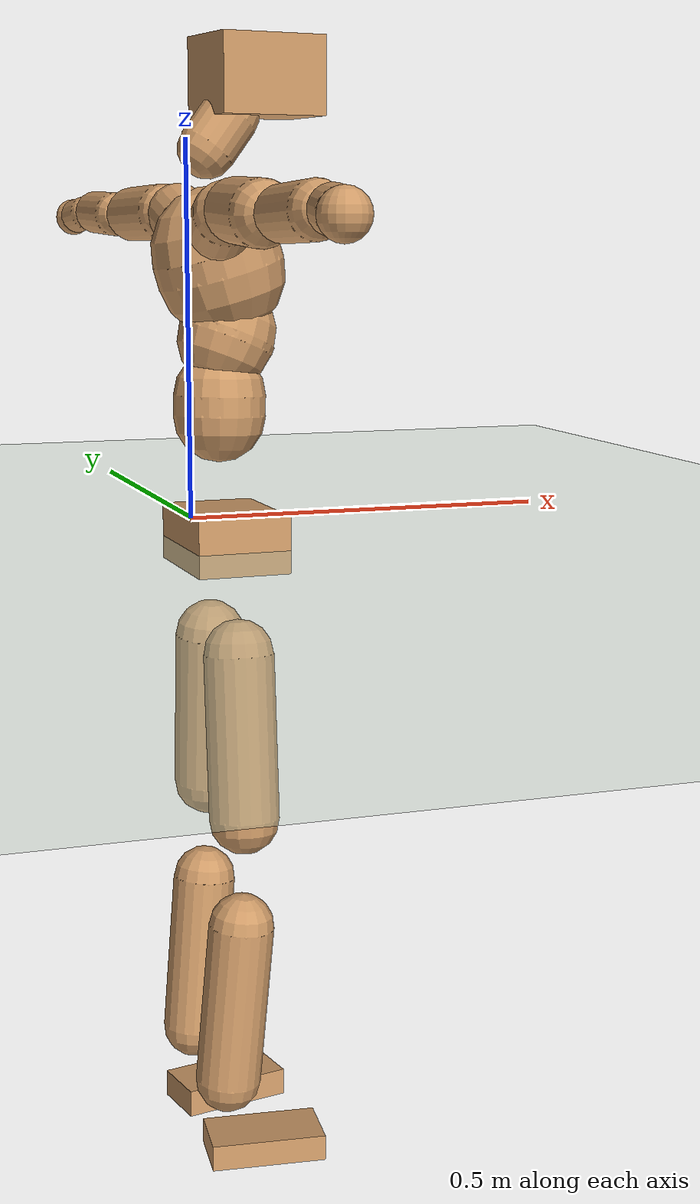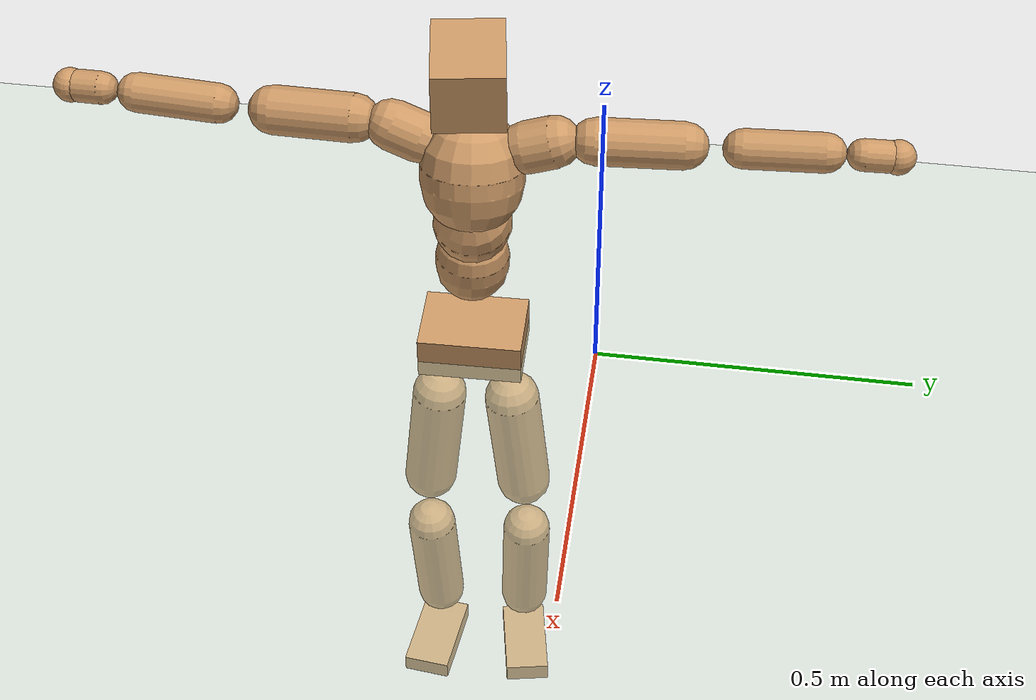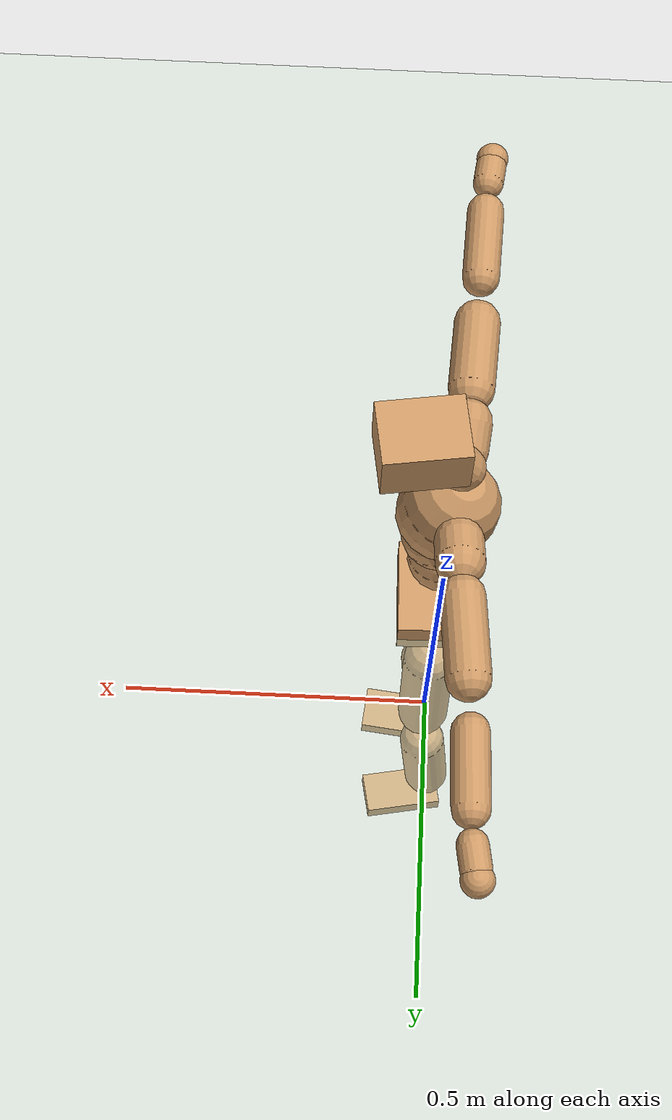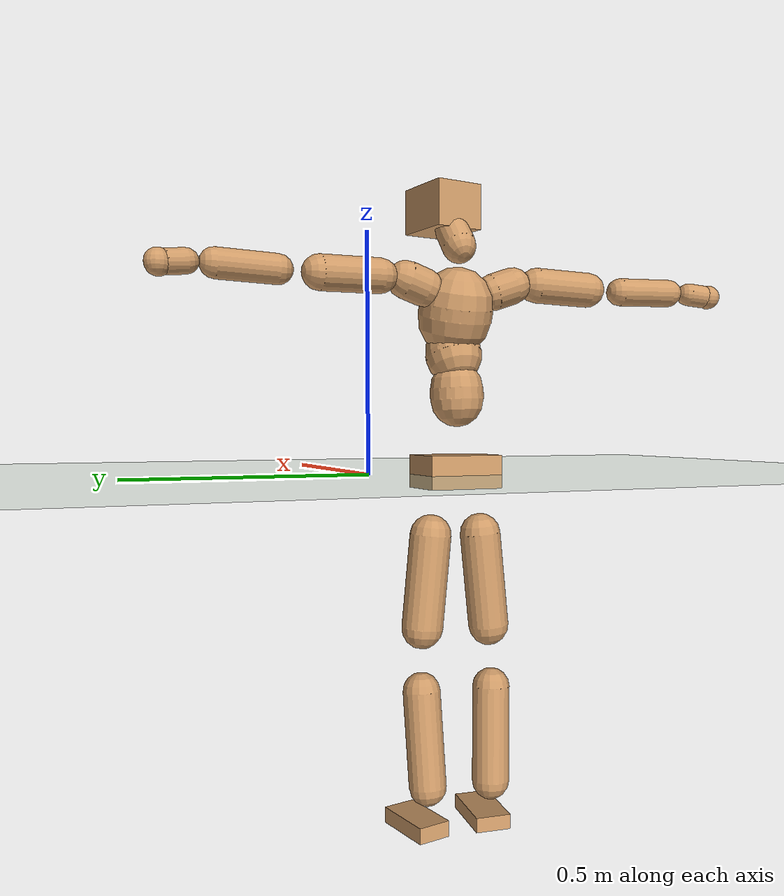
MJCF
<mujoco model="humanoid">
  <compiler coordinate="local" angle="radian"/>
  <default>
    <joint damping="0.0" armature="0.01" stiffness="0.0" limited="true"/>
    <geom conaffinity="1" condim="3" contype="7" margin="0.001" rgba="0.8 0.6 .4 1"/>
  </default>
  <asset>
    <texture type="skybox" builtin="gradient" rgb1=".4 .5 .6" rgb2="0 0 0" width="100" height="100"/>
    <texture builtin="flat" height="1278" mark="cross" markrgb="1 1 1" name="texgeom" random="0.01" rgb1="0.8 0.6 0.4" rgb2="0.8 0.6 0.4" type="cube" width="127"/>
    <texture builtin="checker" height="100" name="texplane" rgb1="0 0 0" rgb2="0.8 0.8 0.8" type="2d" width="100"/>
    <material name="MatPlane" reflectance="0.5" shininess="1" specular="1" texrepeat="60 60" texture="texplane"/>
    <material name="geom" texture="texgeom" texuniform="true"/>
  </asset>
  <worldbody>
    <light cutoff="100" diffuse="1 1 1" dir="-0 0 -1.3" directional="true" exponent="1" pos="0 0 1.3" specular=".1 .1 .1"/>
    <geom conaffinity="1" condim="3" name="floor" pos="0 0 0" rgba="0.8 0.9 0.8 1" size="100 100 .2" type="plane" material="MatPlane"/>
    <body name="Pelvis" pos="-0.0023 -0.1967 0.0162">
      <freejoint name="Pelvis"/>
      <geom type="box" contype="1" conaffinity="1" density="500" pos="-0.0047 -0.0001 -0.0114" size="0.0587 0.0824 0.0356" quat="0.9999 0.0000 0.0000 0.0103" name="Pelvis"/>
      <body name="L_Hip" pos="-0.0094 0.054 -0.0803">
        <joint name="L_Hip_x" type="hinge" pos="0 0 0" axis="1 0 0" stiffness="800" damping="80" armature="0.02" range="-180.0000 180.0000"/>
        <joint name="L_Hip_y" type="hinge" pos="0 0 0" axis="0 1 0" stiffness="800" damping="80" armature="0.02" range="-180.0000 180.0000"/>
        <joint name="L_Hip_z" type="hinge" pos="0 0 0" axis="0 0 1" stiffness="800" damping="80" armature="0.02" range="-180.0000 180.0000"/>
        <geom type="capsule" contype="1" conaffinity="1" density="500" fromto="0.0000 0.0065 -0.0671 0.0000 0.0260 -0.2685" size="0.0448" name="L_Hip"/>
        <body name="L_Knee" pos="0 0.0325 -0.3357">
          <joint name="L_Knee_x" type="hinge" pos="0 0 0" axis="1 0 0" stiffness="800" damping="80" armature="0.02" range="-180.0000 180.0000"/>
          <joint name="L_Knee_y" type="hinge" pos="0 0 0" axis="0 1 0" stiffness="800" damping="80" armature="0.02" range="-180.0000 180.0000"/>
          <joint name="L_Knee_z" type="hinge" pos="0 0 0" axis="0 0 1" stiffness="800" damping="80" armature="0.02" range="-180.0000 180.0000"/>
          <geom type="capsule" contype="1" conaffinity="1" density="500" fromto="-0.0061 -0.0021 -0.0697 -0.0246 -0.0086 -0.2786" size="0.0408" name="L_Knee"/>
          <body name="L_Ankle" pos="-0.0307 -0.0107 -0.3483">
            <joint name="L_Ankle_x" type="hinge" pos="0 0 0" axis="1 0 0" stiffness="800" damping="80" armature="0.02" range="-180.0000 180.0000"/>
            <joint name="L_Ankle_y" type="hinge" pos="0 0 0" axis="0 1 0" stiffness="800" damping="80" armature="0.02" range="-180.0000 180.0000"/>
            <joint name="L_Ankle_z" type="hinge" pos="0 0 0" axis="0 0 1" stiffness="800" damping="80" armature="0.02" range="-180.0000 180.0000"/>
            <geom type="box" contype="1" conaffinity="1" density="500" pos="0.0512 0.0099 -0.0247" size="0.071 0.0376 0.0178" quat="0.9955 0.0000 0.0000 0.0950" name="L_Ankle"/>
            <body name="L_Toe" pos="0.1024 0.0197 -0.0494">
              <joint name="L_Toe_x" type="hinge" pos="0 0 0" axis="1 0 0" stiffness="500" damping="50" armature="0.02" range="-180.0000 180.0000"/>
              <joint name="L_Toe_y" type="hinge" pos="0 0 0" axis="0 1 0" stiffness="500" damping="50" armature="0.02" range="-180.0000 180.0000"/>
              <joint name="L_Toe_z" type="hinge" pos="0 0 0" axis="0 0 1" stiffness="500" damping="50" armature="0.02" range="-180.0000 180.0000"/>
              <geom type="box" contype="1" conaffinity="1" density="500" pos="0.0000 0.0000 0.0257" size="0.0007 0.0019 0.0009" quat="0.9947 0.0000 0.0000 0.1024" name="L_Toe"/>
            </body>
          </body>
        </body>
      </body>
      <body name="R_Hip" pos="-0.006 -0.0526 -0.0798">
        <joint name="R_Hip_x" type="hinge" pos="0 0 0" axis="1 0 0" stiffness="800" damping="80" armature="0.02" range="-180.0000 180.0000"/>
        <joint name="R_Hip_y" type="hinge" pos="0 0 0" axis="0 1 0" stiffness="800" damping="80" armature="0.02" range="-180.0000 180.0000"/>
        <joint name="R_Hip_z" type="hinge" pos="0 0 0" axis="0 0 1" stiffness="800" damping="80" armature="0.02" range="-180.0000 180.0000"/>
        <geom type="capsule" contype="1" conaffinity="1" density="500" fromto="-0.0003 -0.0071 -0.0689 -0.0011 -0.0285 -0.2755" size="0.0442" name="R_Hip"/>
        <body name="R_Knee" pos="-0.0014 -0.0356 -0.3444">
          <joint name="R_Knee_x" type="hinge" pos="0 0 0" axis="1 0 0" stiffness="800" damping="80" armature="0.02" range="-180.0000 180.0000"/>
          <joint name="R_Knee_y" type="hinge" pos="0 0 0" axis="0 1 0" stiffness="800" damping="80" armature="0.02" range="-180.0000 180.0000"/>
          <joint name="R_Knee_z" type="hinge" pos="0 0 0" axis="0 0 1" stiffness="800" damping="80" armature="0.02" range="-180.0000 180.0000"/>
          <geom type="capsule" contype="1" conaffinity="1" density="500" fromto="-0.0057 0.0029 -0.0699 -0.0228 0.0114 -0.2797" size="0.0414" name="R_Knee"/>
          <body name="R_Ankle" pos="-0.0285 0.0143 -0.3496">
            <joint name="R_Ankle_x" type="hinge" pos="0 0 0" axis="1 0 0" stiffness="800" damping="80" armature="0.02" range="-180.0000 180.0000"/>
            <joint name="R_Ankle_y" type="hinge" pos="0 0 0" axis="0 1 0" stiffness="800" damping="80" armature="0.02" range="-180.0000 180.0000"/>
            <joint name="R_Ankle_z" type="hinge" pos="0 0 0" axis="0 0 1" stiffness="800" damping="80" armature="0.02" range="-180.0000 180.0000"/>
            <geom type="box" contype="1" conaffinity="1" density="500" pos="0.0522 -0.0059 -0.0204" size="0.0734 0.0401 0.0166" quat="0.9984 0.0000 0.0000 -0.0559" name="R_Ankle"/>
            <body name="R_Toe" pos="0.1045 -0.0117 -0.0407">
              <joint name="R_Toe_x" type="hinge" pos="0 0 0" axis="1 0 0" stiffness="500" damping="50" armature="0.02" range="-180.0000 180.0000"/>
              <joint name="R_Toe_y" type="hinge" pos="0 0 0" axis="0 1 0" stiffness="500" damping="50" armature="0.02" range="-180.0000 180.0000"/>
              <joint name="R_Toe_z" type="hinge" pos="0 0 0" axis="0 0 1" stiffness="500" damping="50" armature="0.02" range="-180.0000 180.0000"/>
              <geom type="box" contype="1" conaffinity="1" density="500" pos="0.0000 0.0000 0.0222" size="0.0008 0.002 0.0009" quat="0.9990 0.0000 0.0000 -0.0455" name="R_Toe"/>
            </body>
          </body>
        </body>
      </body>
      <body name="Torso" pos="-0.0127 -0.002 0.0917">
        <joint name="Torso_x" type="hinge" pos="0 0 0" axis="1 0 0" stiffness="1000" damping="100" armature="0.02" range="-180.0000 180.0000"/>
        <joint name="Torso_y" type="hinge" pos="0 0 0" axis="0 1 0" stiffness="1000" damping="100" armature="0.02" range="-180.0000 180.0000"/>
        <joint name="Torso_z" type="hinge" pos="0 0 0" axis="0 0 1" stiffness="1000" damping="100" armature="0.02" range="-180.0000 180.0000"/>
        <geom type="capsule" contype="1" conaffinity="1" density="500" fromto="0.0021 0.0024 0.0747 0.0014 0.0016 0.0498" size="0.0572" name="Torso"/>
        <body name="Spine" pos="0.0035 0.0039 0.1244">
          <joint name="Spine_x" type="hinge" pos="0 0 0" axis="1 0 0" stiffness="1000" damping="100" armature="0.02" range="-180.0000 180.0000"/>
          <joint name="Spine_y" type="hinge" pos="0 0 0" axis="0 1 0" stiffness="1000" damping="100" armature="0.02" range="-180.0000 180.0000"/>
          <joint name="Spine_z" type="hinge" pos="0 0 0" axis="0 0 1" stiffness="1000" damping="100" armature="0.02" range="-180.0000 180.0000"/>
          <geom type="capsule" contype="1" conaffinity="1" density="500" fromto="0.0111 0.0014 0.0280 0.0074 0.0009 0.0187" size="0.0603" name="Spine"/>
          <body name="Chest" pos="0.0184 0.0024 0.0466">
            <joint name="Chest_x" type="hinge" pos="0 0 0" axis="1 0 0" stiffness="1000" damping="100" armature="0.02" range="-180.0000 180.0000"/>
            <joint name="Chest_y" type="hinge" pos="0 0 0" axis="0 1 0" stiffness="1000" damping="100" armature="0.02" range="-180.0000 180.0000"/>
            <joint name="Chest_z" type="hinge" pos="0 0 0" axis="0 0 1" stiffness="1000" damping="100" armature="0.02" range="-180.0000 180.0000"/>
            <geom type="capsule" contype="1" conaffinity="1" density="500" fromto="-0.0227 -0.0016 0.0786 -0.0151 -0.0011 0.0524" size="0.079" name="Chest"/>
            <body name="Neck" pos="-0.0421 -0.0046 0.1865">
              <joint name="Neck_x" type="hinge" pos="0 0 0" axis="1 0 0" stiffness="500" damping="50" armature="0.02" range="-180.0000 180.0000"/>
              <joint name="Neck_y" type="hinge" pos="0 0 0" axis="0 1 0" stiffness="500" damping="50" armature="0.02" range="-180.0000 180.0000"/>
              <joint name="Neck_z" type="hinge" pos="0 0 0" axis="0 0 1" stiffness="500" damping="50" armature="0.02" range="-180.0000 180.0000"/>
              <geom type="capsule" contype="1" conaffinity="1" density="500" fromto="0.0099 0.0012 0.0131 0.0398 0.0047 0.0523" size="0.036" name="Neck"/>
              <body name="Head" pos="0.0497 0.0059 0.0654">
                <joint name="Head_x" type="hinge" pos="0 0 0" axis="1 0 0" stiffness="500" damping="50" armature="0.02" range="-180.0000 180.0000"/>
                <joint name="Head_y" type="hinge" pos="0 0 0" axis="0 1 0" stiffness="500" damping="50" armature="0.02" range="-180.0000 180.0000"/>
                <joint name="Head_z" type="hinge" pos="0 0 0" axis="0 0 1" stiffness="500" damping="50" armature="0.02" range="-180.0000 180.0000"/>
                <geom type="box" contype="1" conaffinity="1" density="500" pos="0.0259 0.0039 0.0337" size="0.0677 0.0525 0.0471" quat="0.9972 0.0000 0.0000 0.0754" name="Head"/>
              </body>
            </body>
            <body name="L_Thorax" pos="-0.034 0.0625 0.1042">
              <joint name="L_Thorax_x" type="hinge" pos="0 0 0" axis="1 0 0" stiffness="500" damping="50" armature="0.02" range="-180.0000 180.0000"/>
              <joint name="L_Thorax_y" type="hinge" pos="0 0 0" axis="0 1 0" stiffness="500" damping="50" armature="0.02" range="-180.0000 180.0000"/>
              <joint name="L_Thorax_z" type="hinge" pos="0 0 0" axis="0 0 1" stiffness="500" damping="50" armature="0.02" range="-180.0000 180.0000"/>
              <geom type="capsule" contype="1" conaffinity="1" density="500" fromto="-0.0007 0.0141 0.0046 -0.0026 0.0565 0.0185" size="0.0394" name="L_Thorax"/>
              <body name="L_Shoulder" pos="-0.0033 0.0707 0.0231">
                <joint name="L_Shoulder_x" type="hinge" pos="0 0 0" axis="1 0 0" stiffness="500" damping="50" armature="0.02" range="-720.0000 720.0000"/>
                <joint name="L_Shoulder_y" type="hinge" pos="0 0 0" axis="0 1 0" stiffness="500" damping="50" armature="0.02" range="-720.0000 720.0000"/>
                <joint name="L_Shoulder_z" type="hinge" pos="0 0 0" axis="0 0 1" stiffness="500" damping="50" armature="0.02" range="-720.0000 720.0000"/>
                <geom type="capsule" contype="1" conaffinity="1" density="500" fromto="-0.0037 0.0438 -0.0009 -0.0150 0.1751 -0.0037" size="0.0357" name="L_Shoulder"/>
                <body name="L_Elbow" pos="-0.0187 0.2188 -0.0047">
                  <joint name="L_Elbow_x" type="hinge" pos="0 0 0" axis="1 0 0" stiffness="500" damping="50" armature="0.02" range="-720.0000 720.0000"/>
                  <joint name="L_Elbow_y" type="hinge" pos="0 0 0" axis="0 1 0" stiffness="500" damping="50" armature="0.02" range="-720.0000 720.0000"/>
                  <joint name="L_Elbow_z" type="hinge" pos="0 0 0" axis="0 0 1" stiffness="500" damping="50" armature="0.02" range="-720.0000 720.0000"/>
                  <geom type="capsule" contype="1" conaffinity="1" density="500" fromto="-0.0009 0.0403 0.0012 -0.0037 0.1611 0.0046" size="0.0298" name="L_Elbow"/>
                  <body name="L_Wrist" pos="-0.0046 0.2013 0.0058">
                    <joint name="L_Wrist_x" type="hinge" pos="0 0 0" axis="1 0 0" stiffness="300" damping="30" armature="0.02" range="-180.0000 180.0000"/>
                    <joint name="L_Wrist_y" type="hinge" pos="0 0 0" axis="0 1 0" stiffness="300" damping="30" armature="0.02" range="-180.0000 180.0000"/>
                    <joint name="L_Wrist_z" type="hinge" pos="0 0 0" axis="0 0 1" stiffness="300" damping="30" armature="0.02" range="-180.0000 180.0000"/>
                    <geom type="capsule" contype="1" conaffinity="1" density="500" fromto="-0.0022 0.0129 -0.0016 -0.0088 0.0515 -0.0062" size="0.0242" name="L_Wrist"/>
                    <body name="L_Hand" pos="-0.011 0.0644 -0.0078">
                      <joint name="L_Hand_x" type="hinge" pos="0 0 0" axis="1 0 0" stiffness="300" damping="30" armature="0.02" range="-180.0000 180.0000"/>
                      <joint name="L_Hand_y" type="hinge" pos="0 0 0" axis="0 1 0" stiffness="300" damping="30" armature="0.02" range="-180.0000 180.0000"/>
                      <joint name="L_Hand_z" type="hinge" pos="0 0 0" axis="0 0 1" stiffness="300" damping="30" armature="0.02" range="-180.0000 180.0000"/>
                      <geom type="sphere" contype="1" conaffinity="1" density="500" size="0.0261" pos="0.0000 0.0000 0.0000" name="L_Hand"/>
                    </body>
                  </body>
                </body>
              </body>
            </body>
            <body name="R_Thorax" pos="-0.0374 -0.0659 0.1025">
              <joint name="R_Thorax_x" type="hinge" pos="0 0 0" axis="1 0 0" stiffness="500" damping="50" armature="0.02" range="-180.0000 180.0000"/>
              <joint name="R_Thorax_y" type="hinge" pos="0 0 0" axis="0 1 0" stiffness="500" damping="50" armature="0.02" range="-180.0000 180.0000"/>
              <joint name="R_Thorax_z" type="hinge" pos="0 0 0" axis="0 0 1" stiffness="500" damping="50" armature="0.02" range="-180.0000 180.0000"/>
              <geom type="capsule" contype="1" conaffinity="1" density="500" fromto="-0.0015 -0.0146 0.0050 -0.0061 -0.0585 0.0201" size="0.0389" name="R_Thorax"/>
              <body name="R_Shoulder" pos="-0.0076 -0.0731 0.0251">
                <joint name="R_Shoulder_x" type="hinge" pos="0 0 0" axis="1 0 0" stiffness="500" damping="50" armature="0.02" range="-720.0000 720.0000"/>
                <joint name="R_Shoulder_y" type="hinge" pos="0 0 0" axis="0 1 0" stiffness="500" damping="50" armature="0.02" range="-720.0000 720.0000"/>
                <joint name="R_Shoulder_z" type="hinge" pos="0 0 0" axis="0 0 1" stiffness="500" damping="50" armature="0.02" range="-720.0000 720.0000"/>
                <geom type="capsule" contype="1" conaffinity="1" density="500" fromto="-0.0024 -0.0417 -0.0013 -0.0098 -0.1667 -0.0054" size="0.0373" name="R_Shoulder"/>
                <body name="R_Elbow" pos="-0.0122 -0.2084 -0.0067">
                  <joint name="R_Elbow_x" type="hinge" pos="0 0 0" axis="1 0 0" stiffness="500" damping="50" armature="0.02" range="-720.0000 720.0000"/>
                  <joint name="R_Elbow_y" type="hinge" pos="0 0 0" axis="0 1 0" stiffness="500" damping="50" armature="0.02" range="-720.0000 720.0000"/>
                  <joint name="R_Elbow_z" type="hinge" pos="0 0 0" axis="0 0 1" stiffness="500" damping="50" armature="0.02" range="-720.0000 720.0000"/>
                  <geom type="capsule" contype="1" conaffinity="1" density="500" fromto="-0.0018 -0.0420 0.0010 -0.0073 -0.1681 0.0041" size="0.0302" name="R_Elbow"/>
                  <body name="R_Wrist" pos="-0.0091 -0.2101 0.0052">
                    <joint name="R_Wrist_x" type="hinge" pos="0 0 0" axis="1 0 0" stiffness="300" damping="30" armature="0.02" range="-180.0000 180.0000"/>
                    <joint name="R_Wrist_y" type="hinge" pos="0 0 0" axis="0 1 0" stiffness="300" damping="30" armature="0.02" range="-180.0000 180.0000"/>
                    <joint name="R_Wrist_z" type="hinge" pos="0 0 0" axis="0 0 1" stiffness="300" damping="30" armature="0.02" range="-180.0000 180.0000"/>
                    <geom type="capsule" contype="1" conaffinity="1" density="500" fromto="-0.0016 -0.0130 -0.0011 -0.0064 -0.0518 -0.0046" size="0.025" name="R_Wrist"/>
                    <body name="R_Hand" pos="-0.008 -0.0648 -0.0057">
                      <joint name="R_Hand_x" type="hinge" pos="0 0 0" axis="1 0 0" stiffness="300" damping="30" armature="0.02" range="-180.0000 180.0000"/>
                      <joint name="R_Hand_y" type="hinge" pos="0 0 0" axis="0 1 0" stiffness="300" damping="30" armature="0.02" range="-180.0000 180.0000"/>
                      <joint name="R_Hand_z" type="hinge" pos="0 0 0" axis="0 0 1" stiffness="300" damping="30" armature="0.02" range="-180.0000 180.0000"/>
                      <geom type="sphere" contype="1" conaffinity="1" density="500" size="0.0263" pos="0.0000 0.0000 0.0000" name="R_Hand"/>
                    </body>
                  </body>
                </body>
              </body>
            </body>
          </body>
        </body>
      </body>
    </body>
  </worldbody>
  <actuator>
    <motor name="L_Hip_x" joint="L_Hip_x" gear="500"/>
    <motor name="L_Hip_y" joint="L_Hip_y" gear="500"/>
    <motor name="L_Hip_z" joint="L_Hip_z" gear="500"/>
    <motor name="L_Knee_x" joint="L_Knee_x" gear="500"/>
    <motor name="L_Knee_y" joint="L_Knee_y" gear="500"/>
    <motor name="L_Knee_z" joint="L_Knee_z" gear="500"/>
    <motor name="L_Ankle_x" joint="L_Ankle_x" gear="500"/>
    <motor name="L_Ankle_y" joint="L_Ankle_y" gear="500"/>
    <motor name="L_Ankle_z" joint="L_Ankle_z" gear="500"/>
    <motor name="L_Toe_x" joint="L_Toe_x" gear="500"/>
    <motor name="L_Toe_y" joint="L_Toe_y" gear="500"/>
    <motor name="L_Toe_z" joint="L_Toe_z" gear="500"/>
    <motor name="R_Hip_x" joint="R_Hip_x" gear="500"/>
    <motor name="R_Hip_y" joint="R_Hip_y" gear="500"/>
    <motor name="R_Hip_z" joint="R_Hip_z" gear="500"/>
    <motor name="R_Knee_x" joint="R_Knee_x" gear="500"/>
    <motor name="R_Knee_y" joint="R_Knee_y" gear="500"/>
    <motor name="R_Knee_z" joint="R_Knee_z" gear="500"/>
    <motor name="R_Ankle_x" joint="R_Ankle_x" gear="500"/>
    <motor name="R_Ankle_y" joint="R_Ankle_y" gear="500"/>
    <motor name="R_Ankle_z" joint="R_Ankle_z" gear="500"/>
    <motor name="R_Toe_x" joint="R_Toe_x" gear="500"/>
    <motor name="R_Toe_y" joint="R_Toe_y" gear="500"/>
    <motor name="R_Toe_z" joint="R_Toe_z" gear="500"/>
    <motor name="Torso_x" joint="Torso_x" gear="500"/>
    <motor name="Torso_y" joint="Torso_y" gear="500"/>
    <motor name="Torso_z" joint="Torso_z" gear="500"/>
    <motor name="Spine_x" joint="Spine_x" gear="500"/>
    <motor name="Spine_y" joint="Spine_y" gear="500"/>
    <motor name="Spine_z" joint="Spine_z" gear="500"/>
    <motor name="Chest_x" joint="Chest_x" gear="500"/>
    <motor name="Chest_y" joint="Chest_y" gear="500"/>
    <motor name="Chest_z" joint="Chest_z" gear="500"/>
    <motor name="Neck_x" joint="Neck_x" gear="500"/>
    <motor name="Neck_y" joint="Neck_y" gear="500"/>
    <motor name="Neck_z" joint="Neck_z" gear="500"/>
    <motor name="Head_x" joint="Head_x" gear="500"/>
    <motor name="Head_y" joint="Head_y" gear="500"/>
    <motor name="Head_z" joint="Head_z" gear="500"/>
    <motor name="L_Thorax_x" joint="L_Thorax_x" gear="500"/>
    <motor name="L_Thorax_y" joint="L_Thorax_y" gear="500"/>
    <motor name="L_Thorax_z" joint="L_Thorax_z" gear="500"/>
    <motor name="L_Shoulder_x" joint="L_Shoulder_x" gear="500"/>
    <motor name="L_Shoulder_y" joint="L_Shoulder_y" gear="500"/>
    <motor name="L_Shoulder_z" joint="L_Shoulder_z" gear="500"/>
    <motor name="L_Elbow_x" joint="L_Elbow_x" gear="500"/>
    <motor name="L_Elbow_y" joint="L_Elbow_y" gear="500"/>
    <motor name="L_Elbow_z" joint="L_Elbow_z" gear="500"/>
    <motor name="L_Wrist_x" joint="L_Wrist_x" gear="500"/>
    <motor name="L_Wrist_y" joint="L_Wrist_y" gear="500"/>
    <motor name="L_Wrist_z" joint="L_Wrist_z" gear="500"/>
    <motor name="L_Hand_x" joint="L_Hand_x" gear="500"/>
    <motor name="L_Hand_y" joint="L_Hand_y" gear="500"/>
    <motor name="L_Hand_z" joint="L_Hand_z" gear="500"/>
    <motor name="R_Thorax_x" joint="R_Thorax_x" gear="500"/>
    <motor name="R_Thorax_y" joint="R_Thorax_y" gear="500"/>
    <motor name="R_Thorax_z" joint="R_Thorax_z" gear="500"/>
    <motor name="R_Shoulder_x" joint="R_Shoulder_x" gear="500"/>
    <motor name="R_Shoulder_y" joint="R_Shoulder_y" gear="500"/>
    <motor name="R_Shoulder_z" joint="R_Shoulder_z" gear="500"/>
    <motor name="R_Elbow_x" joint="R_Elbow_x" gear="500"/>
    <motor name="R_Elbow_y" joint="R_Elbow_y" gear="500"/>
    <motor name="R_Elbow_z" joint="R_Elbow_z" gear="500"/>
    <motor name="R_Wrist_x" joint="R_Wrist_x" gear="500"/>
    <motor name="R_Wrist_y" joint="R_Wrist_y" gear="500"/>
    <motor name="R_Wrist_z" joint="R_Wrist_z" gear="500"/>
    <motor name="R_Hand_x" joint="R_Hand_x" gear="500"/>
    <motor name="R_Hand_y" joint="R_Hand_y" gear="500"/>
    <motor name="R_Hand_z" joint="R_Hand_z" gear="500"/>
  </actuator>
  <contact>
    <exclude body1="Torso" body2="Chest"/>
    <exclude body1="Head" body2="Chest"/>
    <exclude body1="R_Knee" body2="R_Toe"/>
    <exclude body1="R_Knee" body2="L_Ankle"/>
    <exclude body1="R_Knee" body2="L_Toe"/>
    <exclude body1="L_Knee" body2="L_Toe"/>
    <exclude body1="L_Knee" body2="R_Ankle"/>
    <exclude body1="L_Knee" body2="R_Toe"/>
    <exclude body1="L_Shoulder" body2="Chest"/>
    <exclude body1="R_Shoulder" body2="Chest"/>
  </contact>
  <sensor/>
  <size njmax="700" nconmax="700"/>
</mujoco>
